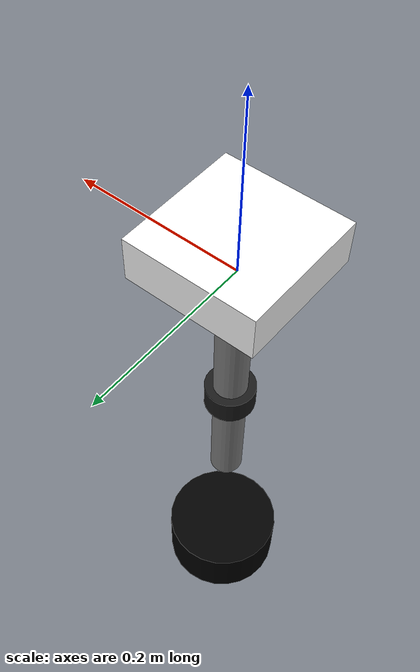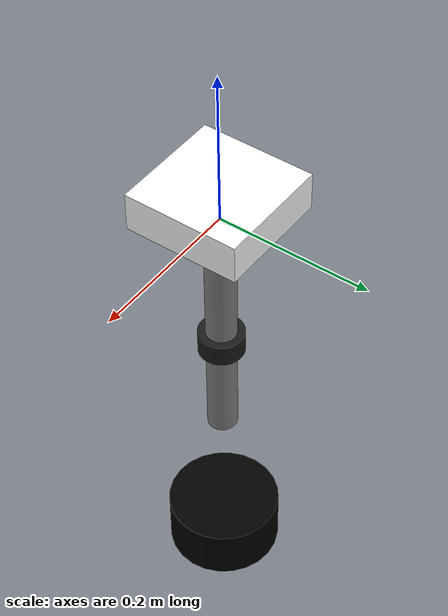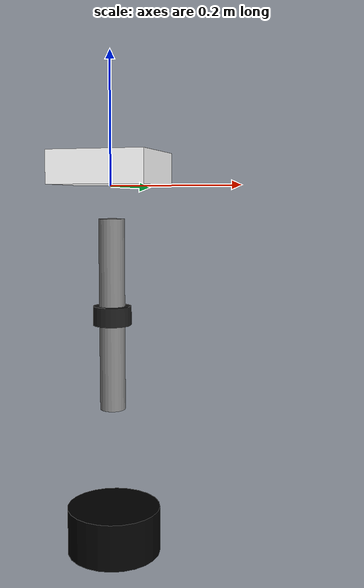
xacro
<?xml version="1.0"?>
<robot xmlns:xacro="http://www.ros.org/wiki/xacro" name="lidar_platform">
  <link name="base_footprint"/>

  <joint name="base_joint" type="fixed">
    <parent link="base_footprint"/>
    <child link="base_link"/>
    <origin xyz="0 0 -0.55" rpy="0 0 0"/>
  </joint>

  <link name="base_link">
    <visual>
      <origin xyz="0 0 0.5764091821001176" rpy="0 0 0"/>
      <geometry>
        <box size="0.15 0.15 0.05"/>
      </geometry>
      <material name="base_link-material">
        <color rgba="1 1 1 1"/>
      </material>
    </visual>
    <collision>
      <origin xyz="0 0 0.5764091821001176" rpy="0 0 0"/>
      <geometry>
        <box size="0.15 0.15 0.05"/>
      </geometry>
    </collision>
    <inertial>
      <origin xyz="0 0 0.5764091821001176" rpy="0 0 0"/>
      <mass value="1"/>
      <inertia ixx="0.16666666666666666" ixy="0" ixz="0" iyy="0.16666666666666666" iyz="0" izz="0.16666666666666666"/>
    </inertial>
  </link>

  <joint name="base_link_to_cylinder0" type="fixed">
    <parent link="base_link"/>
    <child link="cylinder0"/>
    <!-- No offset: position is set entirely by spawn args in launch file -->
    <origin xyz="0 0 0" rpy="0 0 0"/>
  </joint>

  <link name="cylinder0">
    <visual>
      <origin xyz="0 0 0" rpy="0 0 0"/>
      <geometry>
        <cylinder radius="0.075" length="0.075"/>
      </geometry>
      <material name="cylinder0-material">
        <color rgba="0 0 0 1"/>
      </material>
    </visual>
    <collision>
      <origin xyz="0 0 0" rpy="0 0 0"/>
      <geometry>
        <cylinder radius="0.075" length="0.075"/>
      </geometry>
    </collision>
    <inertial>
      <origin xyz="0 0 0" rpy="0 0 0"/>
      <mass value="1"/>
      <inertia ixx="0.3333333333333333" ixy="0" ixz="0" iyy="0.5" iyz="0" izz="0.3333333333333333"/>
    </inertial>
  </link>

  <link name="lidar_support">
    <visual>
      <origin xyz="0 0 -0.15" rpy="0 0 0"/>
      <geometry>
        <cylinder radius="0.02" length="0.3"/>
      </geometry>
      <material name="support_material">
        <color rgba="0.5 0.5 0.5 1"/>
      </material>
    </visual>
  </link>

  <joint name="cylinder0_to_lidar_support" type="fixed">
    <parent link="cylinder0"/>
    <child link="lidar_support"/>
    <origin xyz="0 0 0.5" rpy="0 0 0"/>
  </joint>

  <link name="lidar_sensor">
    <visual>
      <origin xyz="0 0 0" rpy="0 0 0"/>
      <geometry>
        <cylinder radius="0.03" length="0.03"/>
      </geometry>
      <material name="lidar_material">
        <color rgba="0.1 0.1 0.1 1"/>
      </material>
    </visual>
  </link>

  <joint name="lidar_support_to_lidar" type="fixed">
    <parent link="lidar_support"/>
    <child link="lidar_sensor"/>
    <!-- rpy="0 0 0": sensor scans horizontally, no tilt -->
    <origin xyz="0 0 -0.15" rpy="0 0 0"/>
  </joint>

  <!-- Gazebo plugin: Lidar sensor attached to lidar_sensor/link, scanning downwards -->
  <gazebo reference="lidar_sensor">
    <sensor type="ray" name="lidar">
      <always_on>true</always_on>
      <visualize>true</visualize>
      <update_rate>100</update_rate>
      <ray>
        <scan>
          <horizontal>
            <!-- 180° semi-circle: with spawn yaw=-π/2, this fan sweeps
                 from world -X through -Y (into board) to +X, matching
                 the top-down reference image exactly. -->
            <samples>360</samples>
            <resolution>1</resolution>
            <min_angle>-1.5708</min_angle>
            <max_angle>1.5708</max_angle>
          </horizontal>
        </scan>
        <range>
          <min>0.12</min>
          <max>6.0</max>
          <resolution>0.015</resolution>
        </range>
        <noise>
          <type>gaussian</type>
          <mean>0</mean>
          <stddev>0.01</stddev>
        </noise>
      </ray>
      <plugin name="laser_controller" filename="libgazebo_ros_ray_sensor.so">
        <ros>
          <argument>~/out:=scan</argument>
        </ros>
        <output_type>sensor_msgs/LaserScan</output_type>
        <frame_name>lidar_sensor</frame_name>
      </plugin>
    </sensor>
  </gazebo>
</robot>
